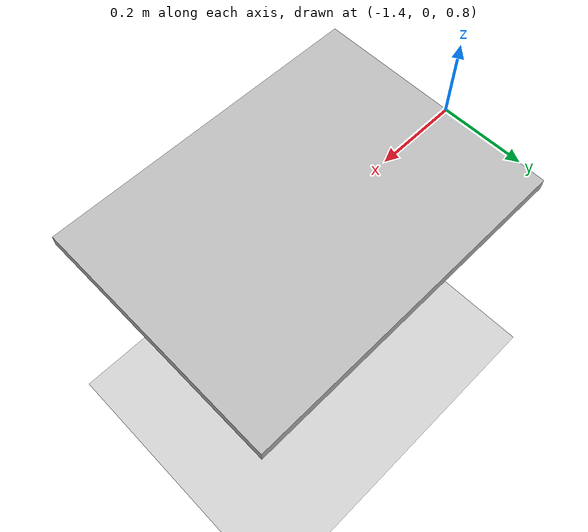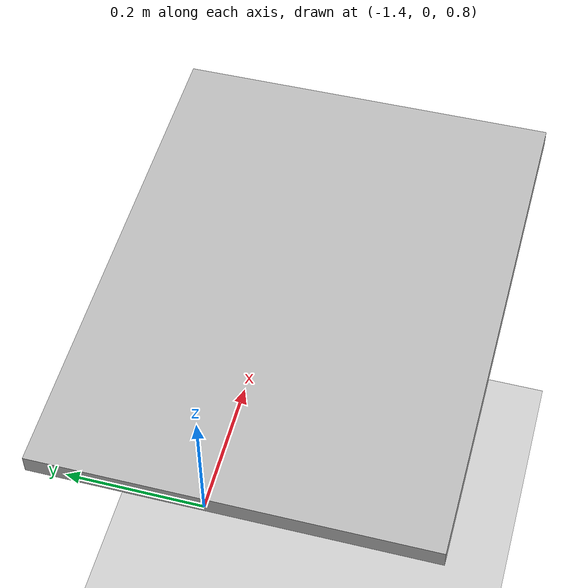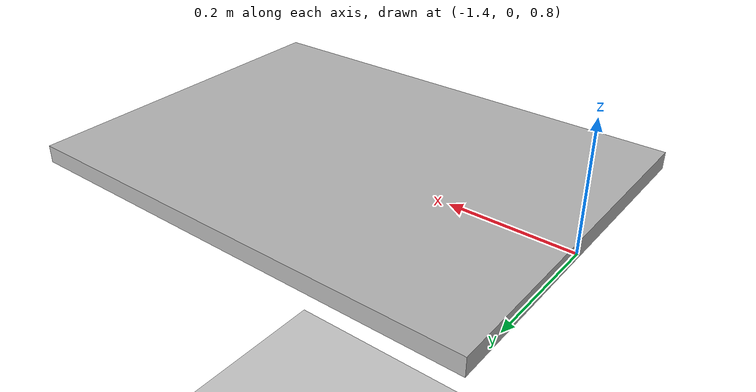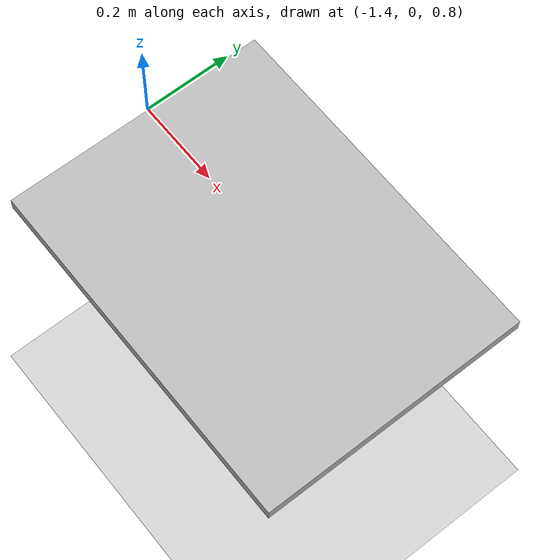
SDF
<sdf version="1.7">
 <world name="default">
  <light name="sun" type="directional">
   <pose>0 0 10 0 -0 0</pose>
   <diffuse>0.8 0.8 0.8 1</diffuse>
   <specular>0.2 0.2 0.2 1</specular>
   <attenuation>
    <range>1000</range>
    <constant>0.9</constant>
    <linear>0.01</linear>
    <quadratic>0.001</quadratic>
   </attenuation>
   <direction>-0.5 0.1 -0.9</direction>
   <spot><inner_angle>0</inner_angle><outer_angle>0</outer_angle><falloff>0</falloff></spot>
  </light>
  <model name="ground_plane">
   <static>1</static>
   <link name="link">
    <collision name="collision">
     <geometry><plane><normal>0 0 1</normal><size>100 100</size></plane></geometry>
     <surface>
      <contact><collide_bitmask>65535</collide_bitmask></contact>
      <friction><ode><mu>100</mu><mu2>50</mu2></ode></friction>
     </surface>
    </collision>
    <visual name="visual">
     <cast_shadows>0</cast_shadows>
     <geometry><plane><normal>0 0 1</normal><size>100 100</size></plane></geometry>
     <material>
      <script><uri>file://media/materials/scripts/gazebo.material</uri><name>Gazebo/Grey</name></script>
     </material>
    </visual>
   </link>
  </model>
  <gravity>0 0 -9.8</gravity>
  <magnetic_field>6e-06 2.3e-05 -4.2e-05</magnetic_field>
  <atmosphere type="adiabatic"/>
  <physics type="ode">
   <max_step_size>0.001</max_step_size>
   <real_time_factor>1</real_time_factor>
   <real_time_update_rate>1000</real_time_update_rate>
  </physics>
  <scene><ambient>0.4 0.4 0.4 1</ambient><background>0.7 0.7 0.7 1</background><shadows>1</shadows></scene>
  <spherical_coordinates>
   <surface_model>EARTH_WGS84</surface_model>
   <latitude_deg>0</latitude_deg>
   <longitude_deg>0</longitude_deg>
   <elevation>0</elevation>
   <heading_deg>0</heading_deg>
  </spherical_coordinates>
  <light name="user_point_light_0" type="point">
   <pose>-0.58659 0.830847 1 0 -0 0</pose>
   <diffuse>0.5 0.5 0.5 1</diffuse>
   <specular>0.1 0.1 0.1 1</specular>
   <attenuation>
    <range>20</range>
    <constant>0.5</constant>
    <linear>0.01</linear>
    <quadratic>0.001</quadratic>
   </attenuation>
   <cast_shadows>0</cast_shadows>
   <direction>0 0 -1</direction>
  </light>
  <model name="charuco_800x600_9x12_60_45_DICT_5X5">
   <static>1</static>
   <link name="charuco">
    <visual name="visual">
     <geometry><mesh><uri>model://charuco_800x600_9x12_60_45_DICT_5X5/model.dae</uri></mesh></geometry>
    </visual>
    <collision name="collision">
     <geometry><mesh><uri>model://charuco_800x600_9x12_60_45_DICT_5X5/model.dae</uri></mesh></geometry>
    </collision>
   </link>
   <pose>-1.35477 0.236081 0.807485 3.13305 -0 0</pose>
  </model>
 </world>
</sdf>
